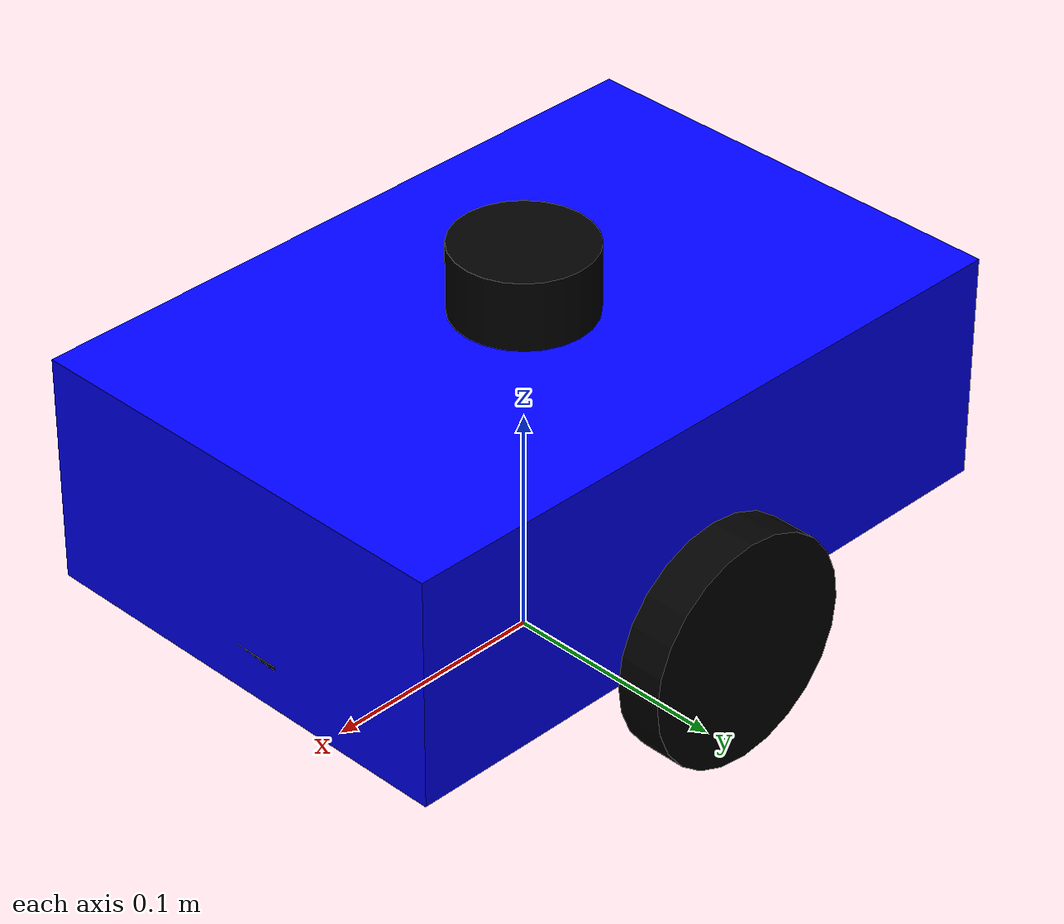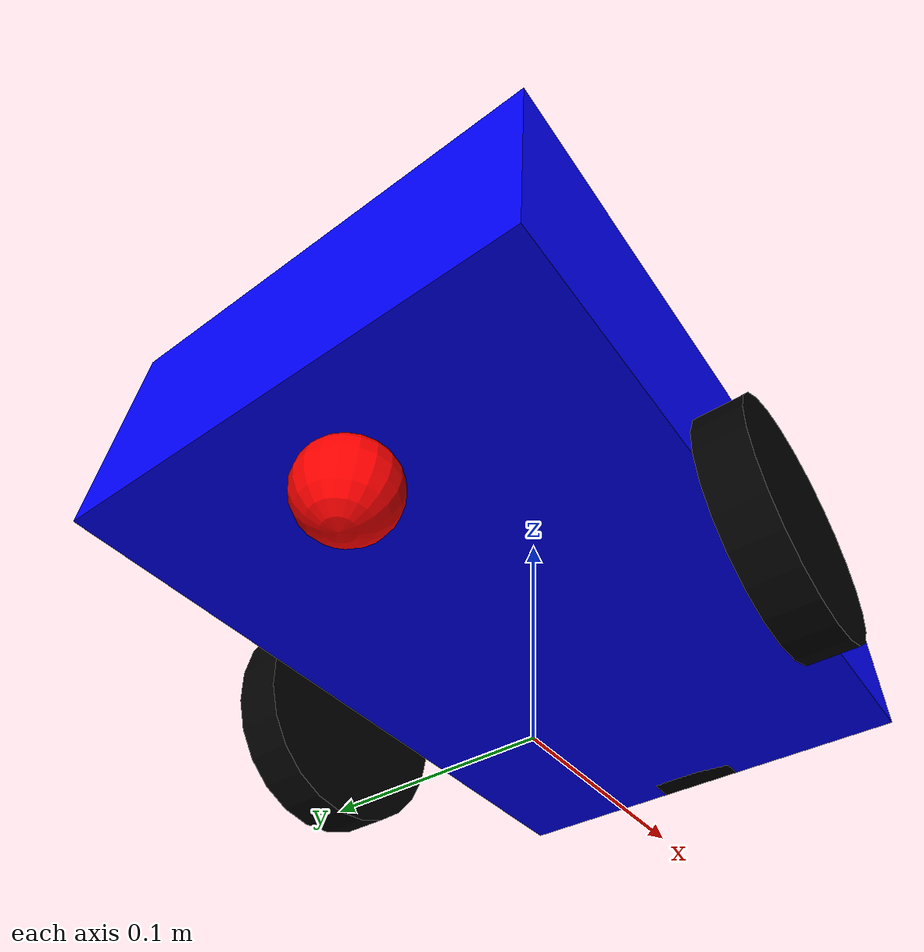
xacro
<?xml version="1.0"?>
<robot xmlns:xacro="http://ros.org/wiki/xacro" name="line_robot">

  <xacro:property name="wheel_radius" value="0.05"/>
  <xacro:property name="wheel_width" value="0.02"/>
  <xacro:property name="body_length" value="0.3"/>
  <xacro:property name="body_width" value="0.2"/>
  <xacro:property name="body_height" value="0.1"/>
  <xacro:property name="caster_radius" value="0.02"/>

  <link name="base_footprint"/>

  <link name="base_link">
    <visual>
      <geometry>
        <box size="${body_length} ${body_width} ${body_height}"/>
      </geometry>
      <material name="blue">
        <color rgba="0 0 1 1"/>
      </material>
    </visual>
    <collision>
      <geometry>
        <box size="${body_length} ${body_width} ${body_height}"/>
      </geometry>
    </collision>
    <inertial>
      <mass value="2.0"/>
      <origin xyz="0 0 0" rpy="0 0 0"/>
      <inertia ixx="0.02" ixy="0.0" ixz="0.0" iyy="0.05" iyz="0.0" izz="0.05"/>
    </inertial>
  </link>

  <joint name="base_footprint_joint" type="fixed">
    <parent link="base_footprint"/>
    <child link="base_link"/>
    <origin xyz="0 0 ${wheel_radius + body_height/2}" rpy="0 0 0"/>
  </joint>

  <xacro:macro name="wheel" params="prefix x_offset y_offset">
    <link name="${prefix}_wheel">
      <visual>
        <geometry>
          <cylinder radius="${wheel_radius}" length="${wheel_width}"/>
        </geometry>
        <material name="black">
          <color rgba="0 0 0 1"/>
        </material>
      </visual>
      <collision>
        <geometry>
          <cylinder radius="${wheel_radius}" length="${wheel_width}"/>
        </geometry>
      </collision>
      <inertial>
        <mass value="0.2"/>
        <origin xyz="0 0 0" rpy="0 0 0"/>
        <inertia ixx="0.0002" ixy="0.0" ixz="0.0" iyy="0.0002" iyz="0.0" izz="0.0001"/>
      </inertial>
    </link>

    <joint name="${prefix}_wheel_joint" type="continuous">
      <parent link="base_link"/>
      <child link="${prefix}_wheel"/>
      <origin xyz="${x_offset} ${y_offset} ${-body_height/2}" rpy="-1.5708 0 0"/>
      <axis xyz="0 0 1"/>
      <dynamics damping="0.1" friction="0.1"/>
    </joint>
  </xacro:macro>

  <xacro:wheel prefix="left" x_offset="0.0" y_offset="0.11"/>
  <xacro:wheel prefix="right" x_offset="0.0" y_offset="-0.11"/>

  <link name="caster_wheel">
    <visual>
      <geometry>
        <sphere radius="${caster_radius}"/>
      </geometry>
      <material name="red">
        <color rgba="1 0 0 1"/>
      </material>
    </visual>
    <collision>
      <geometry>
        <sphere radius="${caster_radius}"/>
      </geometry>
    </collision>
    <inertial>
      <mass value="0.05"/>
      <origin xyz="0 0 0" rpy="0 0 0"/>
      <inertia ixx="0.00001" ixy="0.0" ixz="0.0" iyy="0.00001" iyz="0.0" izz="0.00001"/>
    </inertial>
  </link>

  <joint name="caster_wheel_joint" type="fixed">
    <parent link="base_link"/>
    <child link="caster_wheel"/>
    <origin xyz="-0.11 0 ${-body_height/2 - caster_radius + 0.01}" rpy="0 0 0"/>
  </joint>

  <!-- ================= Lidar Sensor ================= -->
  <link name="lidar_link">
    <visual>
      <geometry><cylinder radius="0.03" length="0.03"/></geometry>
      <material name="black"/>
    </visual>
  </link>
  <joint name="lidar_joint" type="fixed">
    <parent link="base_link"/>
    <child link="lidar_link"/>
    <origin xyz="0 0 ${body_height/2 + 0.015}" rpy="0 0 0"/>
  </joint>

  <gazebo reference="lidar_link">
    <sensor name="lidar" type="gpu_lidar">
      <always_on>true</always_on>
      <visualize>true</visualize>
      <update_rate>10</update_rate>
      <topic>scan</topic>
      <gz_frame_id>lidar_link</gz_frame_id>
      <lidar>
        <scan>
          <horizontal>
            <samples>360</samples>
            <resolution>1.0</resolution>
            <min_angle>-3.14159</min_angle>
            <max_angle>3.14159</max_angle>
          </horizontal>
        </scan>
        <range>
          <min>0.12</min>
          <max>3.5</max>
          <resolution>0.015</resolution>
        </range>
      </lidar>
    </sensor>
  </gazebo>

  <!-- ================= Downward Camera ================= -->
  <link name="camera_link">
    <visual>
      <geometry><box size="0.02 0.04 0.02"/></geometry>
      <material name="black"/>
    </visual>
  </link>
  <joint name="camera_joint" type="fixed">
    <parent link="base_link"/>
    <child link="camera_link"/>
    <origin xyz="0.14 0 -0.04" rpy="0 1.5708 0"/>
  </joint>

  <gazebo reference="camera_link">
    <sensor name="camera" type="camera">
      <always_on>true</always_on>
      <visualize>true</visualize>
      <update_rate>20</update_rate>
      <topic>camera/image_raw</topic>
      <gz_frame_id>camera_link</gz_frame_id>
      <camera>
        <camera_info_topic>camera/camera_info</camera_info_topic>
        <horizontal_fov>1.089</horizontal_fov>
        <image>
          <width>640</width>
          <height>480</height>
        </image>
        <clip>
          <near>0.01</near>
          <far>8.0</far>
        </clip>
      </camera>
    </sensor>
  </gazebo>

  <!-- ================= Gazebo Plugins ================= -->
  <gazebo>
    <!-- Diff Drive -->
    <plugin filename="gz-sim-diff-drive-system" name="gz::sim::systems::DiffDrive">
      <left_joint>left_wheel_joint</left_joint>
      <right_joint>right_wheel_joint</right_joint>
      <wheel_separation>0.22</wheel_separation>
      <wheel_radius>0.05</wheel_radius>
      <odom_publish_frequency>50</odom_publish_frequency>
      <topic>cmd_vel</topic>
      <odom_topic>odom</odom_topic>
      <tf_topic>tf</tf_topic>
      <frame_id>odom</frame_id>
      <child_frame_id>base_footprint</child_frame_id>
    </plugin>

    <!-- Joint State Publisher -->
    <plugin filename="gz-sim-joint-state-publisher-system" name="gz::sim::systems::JointStatePublisher">
      <topic>joint_states</topic>
      <joint_name>left_wheel_joint</joint_name>
      <joint_name>right_wheel_joint</joint_name>
    </plugin>
  </gazebo>

</robot>
